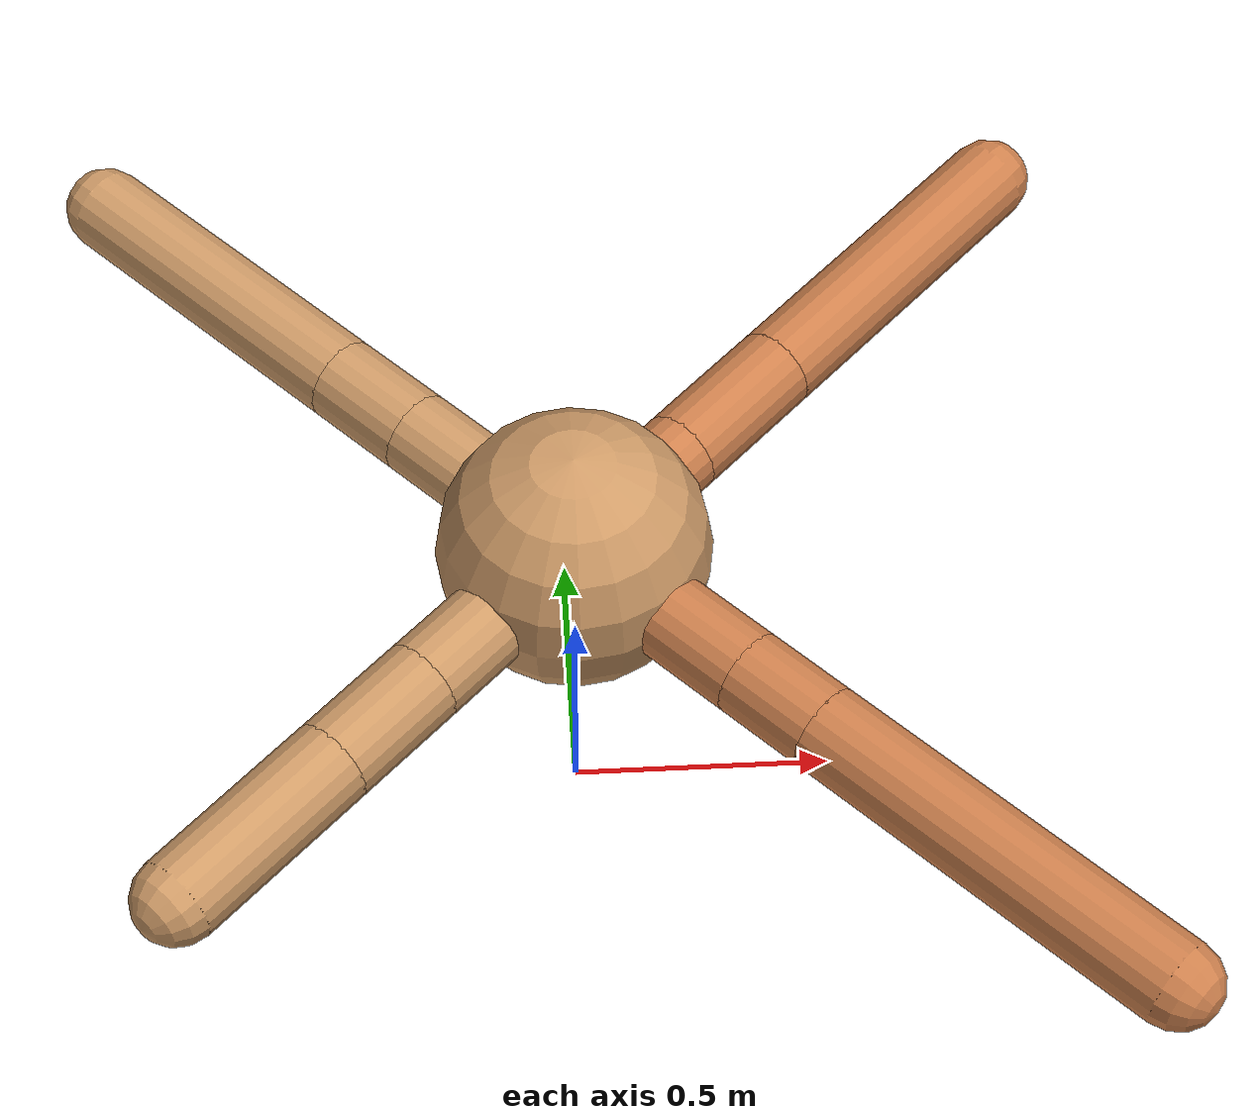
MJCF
<mujoco model="ant">
  <compiler angle="degree" coordinate="local" inertiafromgeom="true" />
  <option integrator="RK4" timestep="0.01" />
  <custom>
    <numeric data="0.0 0.0 0.55 1.0 0.0 0.0 0.0 0.0 1.0 0.0 -1.0 0.0 -1.0 0.0 1.0" name="init_qpos" />
  </custom>
  <default>
    <joint armature="1" damping="1" limited="true" />
    <geom conaffinity="0" condim="3" density="5.0" friction="1.5 0.1 0.1" margin="0.01" rgba="0.8 0.6 0.4 1" />
  </default>
  <worldbody>
    <body name="torso" pos="0 0 0.75">
      <geom name="torso_geom" pos="0 0 0" size="0.25" type="sphere" />

      <body name="front_left_leg" pos="0 0 0">
        <geom fromto="0.0 0.0 0.0 0.20569526681354106 0.20569526681354106 0.0" name="aux_1_geom" size="0.08" type="capsule" rgba=".8 .5 .3 1" />
        <body name="aux_1" pos="0.20569526681354106 0.20569526681354106 0.0">
          <joint axis="0 0 1" name="hip_1" pos="0.0 0.0 0.0" range="-40 40" type="hinge" />
          <geom fromto="0.0 0.0 0.0 0.18845188349839123 0.18845188349839123 0.0" name="left_leg_geom" size="0.08" type="capsule" rgba=".8 .5 .3 1" />
          <body pos="0.18845188349839123 0.18845188349839123 0.0" name="front_left_foot">
            <joint axis="-1 1 0" name="ankle_1" pos="0.0 0.0 0.0" range="30 100" type="hinge" />
            <geom fromto="0.0 0.0 0.0 0.45786791465118953 0.45786791465118953 0.0" name="left_ankle_geom" size="0.08" type="capsule" rgba=".8 .5 .3 1" />
          </body>
        </body>
      </body>
      <body name="front_right_leg" pos="0 0 0">
        <geom fromto="0.0 0.0 0.0 -0.27649140152438517 0.27649140152438517 0.0" name="aux_2_geom" size="0.08" type="capsule" />
        <body name="aux_2" pos="-0.27649140152438517 0.27649140152438517 0.0">
          <joint axis="0 0 1" name="hip_2" pos="0.0 0.0 0.0" range="-40 40" type="hinge" />
          <geom fromto="0.0 0.0 0.0 -0.13566431046327967 0.13566431046327967 0.0" name="right_leg_geom" size="0.08" type="capsule" />
          <body pos="-0.13566431046327967 0.13566431046327967 0.0" name="front_right_foot">
            <joint axis="1 1 0" name="ankle_2" pos="0.0 0.0 0.0" range="-100 -30" type="hinge" />
            <geom fromto="0.0 0.0 0.0 -0.4540446308678031 0.4540446308678031 0.0" name="right_ankle_geom" size="0.08" type="capsule" />
          </body>
        </body>
      </body>
      <body name="left_back_leg" pos="0 0 0">
        <geom fromto="0.0 0.0 0.0 -0.2765064558335203 -0.2765064558335203 0.0" name="aux_3_geom" size="0.08" type="capsule" />
        <body name="aux_3" pos="-0.2765064558335203 -0.2765064558335203 0.0">
          <joint axis="0 0 1" name="hip_3" pos="0.0 0.0 0.0" range="-40 40" type="hinge" />
          <geom fromto="0.0 0.0 0.0 -0.1570265976547658 -0.1570265976547658 0.0" name="back_leg_geom" size="0.08" type="capsule" />
          <body pos="-0.1570265976547658 -0.1570265976547658 0.0" name="left_back_foot">
            <joint axis="-1 1 0" name="ankle_3" pos="0.0 0.0 0.0" range="-100 -30" type="hinge" />
            <geom fromto="0.0 0.0 0.0 -0.2592866028593874 -0.2592866028593874 0.0" name="third_ankle_geom" size="0.08" type="capsule" />
          </body>
        </body>
      </body>
      <body name="right_back_leg" pos="0 0 0">
        <geom fromto="0.0 0.0 0.0 0.2880732932406946 -0.2880732932406946 0.0" name="aux_4_geom" size="0.08" type="capsule" rgba=".8 .5 .3 1" />
        <body name="aux_4" pos="0.2880732932406946 -0.2880732932406946 0.0">
          <joint axis="0 0 1" name="hip_4" pos="0.0 0.0 0.0" range="-40 40" type="hinge" />
          <geom fromto="0.0 0.0 0.0 0.12118615744703964 -0.12118615744703964 0.0" name="rightback_leg_geom" size="0.08" type="capsule" rgba=".8 .5 .3 1" />
          <body pos="0.12118615744703964 -0.12118615744703964 0.0" name="right_back_foot">
            <joint axis="1 1 0" name="ankle_4" pos="0.0 0.0 0.0" range="30 100" type="hinge" />
            <geom fromto="0.0 0.0 0.0 0.526828411158265 -0.526828411158265 0.0" name="fourth_ankle_geom" size="0.08" type="capsule" rgba=".8 .5 .3 1" />
          </body>
        </body>
      </body>
    </body>
  </worldbody>
  <actuator>
    <motor ctrllimited="true" ctrlrange="-1.0 1.0" joint="hip_4" gear="150" />
    <motor ctrllimited="true" ctrlrange="-1.0 1.0" joint="ankle_4" gear="150" />
    <motor ctrllimited="true" ctrlrange="-1.0 1.0" joint="hip_1" gear="150" />
    <motor ctrllimited="true" ctrlrange="-1.0 1.0" joint="ankle_1" gear="150" />
    <motor ctrllimited="true" ctrlrange="-1.0 1.0" joint="hip_2" gear="150" />
    <motor ctrllimited="true" ctrlrange="-1.0 1.0" joint="ankle_2" gear="150" />
    <motor ctrllimited="true" ctrlrange="-1.0 1.0" joint="hip_3" gear="150" />
    <motor ctrllimited="true" ctrlrange="-1.0 1.0" joint="ankle_3" gear="150" />
  </actuator>
</mujoco>
